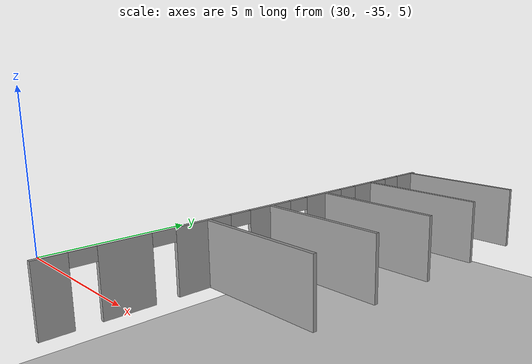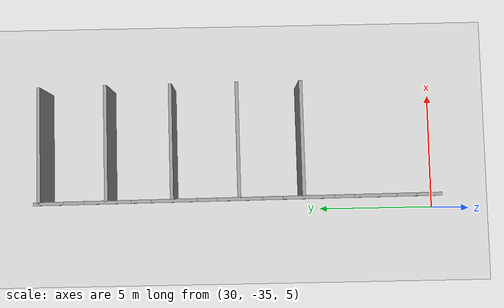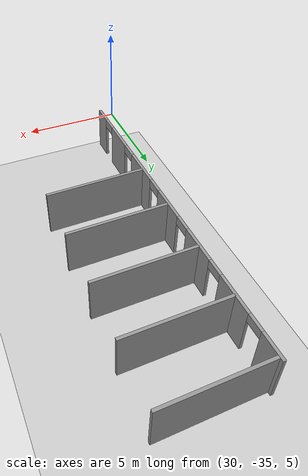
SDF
<sdf version="1.6">
 <world name="default">
  <model name="ground_plane">
   <static>1</static>
   <link name="link">
    <collision name="collision">
     <geometry><plane><normal>0 0 1</normal><size>100 100</size></plane></geometry>
     <surface>
      <contact><collide_bitmask>65535</collide_bitmask></contact>
      <friction><ode><mu>100</mu><mu2>50</mu2></ode></friction>
     </surface>
    </collision>
    <visual name="visual">
     <cast_shadows>0</cast_shadows>
     <geometry><plane><normal>0 0 1</normal><size>100 100</size></plane></geometry>
     <material>
      <script><uri>file://media/materials/scripts/gazebo.material</uri><name>Gazebo/Grey</name></script>
     </material>
    </visual>
   </link>
  </model>
  <model name="6_cubicles_1">
   <link name="Wall_18">
    <pose>2.64253 3.06306 -0 0 0 -1.5708</pose>
    <visual name="Wall_18_Visual_0">
     <pose>-8.56856 0 1.25 0 -0 0</pose>
     <geometry><box><size>1.11288 0.15 2.5</size></box></geometry>
     <material>
      <script><uri>file://media/materials/scripts/gazebo.material</uri><name>Gazebo/Grey</name></script>
      <ambient>1 1 1 1</ambient>
      <shader type="pixel"/>
     </material>
     <meta><layer>0</layer></meta>
    </visual>
    <visual name="Wall_18_Visual_5">
     <pose>5.80967 0 1.25 0 -0 0</pose>
     <geometry><box><size>2.1139 0.15 2.5</size></box></geometry>
     <material>
      <script><uri>file://media/materials/scripts/gazebo.material</uri><name>Gazebo/Grey</name></script>
      <ambient>1 1 1 1</ambient>
      <shader type="pixel"/>
     </material>
     <meta><layer>0</layer></meta>
    </visual>
    <visual name="Wall_18_Visual_11">
     <pose>4.30272 0 2.25 0 -0 0</pose>
     <geometry><box><size>0.9 0.15 0.5</size></box></geometry>
     <material>
      <script><uri>file://media/materials/scripts/gazebo.material</uri><name>Gazebo/Grey</name></script>
      <ambient>1 1 1 1</ambient>
      <shader type="pixel"/>
     </material>
     <meta><layer>0</layer></meta>
    </visual>
    <visual name="Wall_18_Visual_8">
     <pose>-4.77713 0 2.25 0 -0 0</pose>
     <geometry><box><size>0.9 0.15 0.5</size></box></geometry>
     <material>
      <script><uri>file://media/materials/scripts/gazebo.material</uri><name>Gazebo/Grey</name></script>
      <ambient>1 1 1 1</ambient>
      <shader type="pixel"/>
     </material>
     <meta><layer>0</layer></meta>
    </visual>
    <visual name="Wall_18_Visual_4">
     <pose>2.83392 0 1.25 0 -0 0</pose>
     <geometry><box><size>2.0376 0.15 2.5</size></box></geometry>
     <material>
      <script><uri>file://media/materials/scripts/gazebo.material</uri><name>Gazebo/Grey</name></script>
      <ambient>1 1 1 1</ambient>
      <shader type="pixel"/>
     </material>
     <meta><layer>0</layer></meta>
    </visual>
    <visual name="Wall_18_Visual_3">
     <pose>-0.103676 0 1.25 0 -0 0</pose>
     <geometry><box><size>2.0376 0.15 2.5</size></box></geometry>
     <material>
      <script><uri>file://media/materials/scripts/gazebo.material</uri><name>Gazebo/Grey</name></script>
      <ambient>1 1 1 1</ambient>
      <shader type="pixel"/>
     </material>
     <meta><layer>0</layer></meta>
    </visual>
    <visual name="Wall_18_Visual_12">
     <pose>7.31662 0 2.25 0 -0 0</pose>
     <geometry><box><size>0.9 0.15 0.5</size></box></geometry>
     <material>
      <script><uri>file://media/materials/scripts/gazebo.material</uri><name>Gazebo/Grey</name></script>
      <ambient>1 1 1 1</ambient>
      <shader type="pixel"/>
     </material>
     <meta><layer>0</layer></meta>
    </visual>
    <visual name="Wall_18_Visual_9">
     <pose>-1.57248 0 2.25 0 -0 0</pose>
     <geometry><box><size>0.9 0.15 0.5</size></box></geometry>
     <material>
      <script><uri>file://media/materials/scripts/gazebo.material</uri><name>Gazebo/Grey</name></script>
      <ambient>1 1 1 1</ambient>
      <shader type="pixel"/>
     </material>
     <meta><layer>0</layer></meta>
    </visual>
    <visual name="Wall_18_Visual_2">
     <pose>-3.1748 0 1.25 0 -0 0</pose>
     <geometry><box><size>2.30465 0.15 2.5</size></box></geometry>
     <material>
      <script><uri>file://media/materials/scripts/gazebo.material</uri><name>Gazebo/Grey</name></script>
      <ambient>1 1 1 1</ambient>
      <shader type="pixel"/>
     </material>
     <meta><layer>0</layer></meta>
    </visual>
    <visual name="Wall_18_Visual_6">
     <pose>8.44581 0 1.25 0 -0 0</pose>
     <geometry><box><size>1.35838 0.15 2.5</size></box></geometry>
     <material>
      <script><uri>file://media/materials/scripts/gazebo.material</uri><name>Gazebo/Grey</name></script>
      <ambient>1 1 1 1</ambient>
      <shader type="pixel"/>
     </material>
     <meta><layer>0</layer></meta>
    </visual>
    <visual name="Wall_18_Visual_1">
     <pose>-6.16963 0 1.25 0 -0 0</pose>
     <geometry><box><size>1.885 0.15 2.5</size></box></geometry>
     <material>
      <script><uri>file://media/materials/scripts/gazebo.material</uri><name>Gazebo/Grey</name></script>
      <ambient>1 1 1 1</ambient>
      <shader type="pixel"/>
     </material>
     <meta><layer>0</layer></meta>
    </visual>
    <visual name="Wall_18_Visual_10">
     <pose>1.36512 0 2.25 0 -0 0</pose>
     <geometry><box><size>0.9 0.15 0.5</size></box></geometry>
     <material>
      <script><uri>file://media/materials/scripts/gazebo.material</uri><name>Gazebo/Grey</name></script>
      <ambient>1 1 1 1</ambient>
      <shader type="pixel"/>
     </material>
     <meta><layer>0</layer></meta>
    </visual>
    <visual name="Wall_18_Visual_7">
     <pose>-7.56212 0 2.25 0 -0 0</pose>
     <geometry><box><size>0.9 0.15 0.5</size></box></geometry>
     <material>
      <script><uri>file://media/materials/scripts/gazebo.material</uri><name>Gazebo/Grey</name></script>
      <ambient>1 1 1 1</ambient>
      <shader type="pixel"/>
     </material>
     <meta><layer>0</layer></meta>
    </visual>
    <collision name="Wall_18_Collision_7">
     <pose>-7.56212 0 2.25 0 -0 0</pose>
     <geometry><box><size>0.9 0.15 0.5</size></box></geometry>
     <surface>
      <friction>
       <ode><mu>1</mu><mu2>1</mu2><fdir1>0 0 0</fdir1><slip1>0</slip1><slip2>0</slip2></ode>
       <torsional>
        <coefficient>1</coefficient>
        <patch_radius>0</patch_radius>
        <surface_radius>0</surface_radius>
        <use_patch_radius>1</use_patch_radius>
        <ode><slip>0</slip></ode>
       </torsional>
      </friction>
      <bounce><restitution_coefficient>0</restitution_coefficient><threshold>1e+06</threshold></bounce>
      <contact>
       <collide_without_contact>0</collide_without_contact>
       <collide_without_contact_bitmask>1</collide_without_contact_bitmask>
       <collide_bitmask>1</collide_bitmask>
       <ode>
        <soft_cfm>0</soft_cfm>
        <soft_erp>0.2</soft_erp>
        <kp>1e+13</kp>
        <kd>1</kd>
        <max_vel>0.01</max_vel>
        <min_depth>0</min_depth>
       </ode>
       <bullet>
        <split_impulse>1</split_impulse>
        <split_impulse_penetration_threshold>-0.01</split_impulse_penetration_threshold>
        <soft_cfm>0</soft_cfm>
        <soft_erp>0.2</soft_erp>
        <kp>1e+13</kp>
        <kd>1</kd>
       </bullet>
      </contact>
     </surface>
    </collision>
    <collision name="Wall_18_Collision_1">
     <pose>-6.16963 0 1.25 0 -0 0</pose>
     <geometry><box><size>1.885 0.15 2.5</size></box></geometry>
     <surface>
      <friction>
       <ode><mu>1</mu><mu2>1</mu2><fdir1>0 0 0</fdir1><slip1>0</slip1><slip2>0</slip2></ode>
       <torsional>
        <coefficient>1</coefficient>
        <patch_radius>0</patch_radius>
        <surface_radius>0</surface_radius>
        <use_patch_radius>1</use_patch_radius>
        <ode><slip>0</slip></ode>
       </torsional>
      </friction>
      <bounce><restitution_coefficient>0</restitution_coefficient><threshold>1e+06</threshold></bounce>
      <contact>
       <collide_without_contact>0</collide_without_contact>
       <collide_without_contact_bitmask>1</collide_without_contact_bitmask>
       <collide_bitmask>1</collide_bitmask>
       <ode>
        <soft_cfm>0</soft_cfm>
        <soft_erp>0.2</soft_erp>
        <kp>1e+13</kp>
        <kd>1</kd>
        <max_vel>0.01</max_vel>
        <min_depth>0</min_depth>
       </ode>
       <bullet>
        <split_impulse>1</split_impulse>
        <split_impulse_penetration_threshold>-0.01</split_impulse_penetration_threshold>
        <soft_cfm>0</soft_cfm>
        <soft_erp>0.2</soft_erp>
        <kp>1e+13</kp>
        <kd>1</kd>
       </bullet>
      </contact>
     </surface>
    </collision>
    <collision name="Wall_18_Collision_12">
     <pose>7.31662 0 2.25 0 -0 0</pose>
     <geometry><box><size>0.9 0.15 0.5</size></box></geometry>
     <surface>
      <friction>
       <ode><mu>1</mu><mu2>1</mu2><fdir1>0 0 0</fdir1><slip1>0</slip1><slip2>0</slip2></ode>
       <torsional>
        <coefficient>1</coefficient>
        <patch_radius>0</patch_radius>
        <surface_radius>0</surface_radius>
        <use_patch_radius>1</use_patch_radius>
        <ode><slip>0</slip></ode>
       </torsional>
      </friction>
      <bounce><restitution_coefficient>0</restitution_coefficient><threshold>1e+06</threshold></bounce>
      <contact>
       <collide_without_contact>0</collide_without_contact>
       <collide_without_contact_bitmask>1</collide_without_contact_bitmask>
       <collide_bitmask>1</collide_bitmask>
       <ode>
        <soft_cfm>0</soft_cfm>
        <soft_erp>0.2</soft_erp>
        <kp>1e+13</kp>
        <kd>1</kd>
        <max_vel>0.01</max_vel>
        <min_depth>0</min_depth>
       </ode>
       <bullet>
        <split_impulse>1</split_impulse>
        <split_impulse_penetration_threshold>-0.01</split_impulse_penetration_threshold>
        <soft_cfm>0</soft_cfm>
        <soft_erp>0.2</soft_erp>
        <kp>1e+13</kp>
        <kd>1</kd>
       </bullet>
      </contact>
     </surface>
    </collision>
    <collision name="Wall_18_Collision_0">
     <pose>-8.56856 0 1.25 0 -0 0</pose>
     <geometry><box><size>1.11288 0.15 2.5</size></box></geometry>
     <surface>
      <friction>
       <ode><mu>1</mu><mu2>1</mu2><fdir1>0 0 0</fdir1><slip1>0</slip1><slip2>0</slip2></ode>
       <torsional>
        <coefficient>1</coefficient>
        <patch_radius>0</patch_radius>
        <surface_radius>0</surface_radius>
        <use_patch_radius>1</use_patch_radius>
        <ode><slip>0</slip></ode>
       </torsional>
      </friction>
      <bounce><restitution_coefficient>0</restitution_coefficient><threshold>1e+06</threshold></bounce>
      <contact>
       <collide_without_contact>0</collide_without_contact>
       <collide_without_contact_bitmask>1</collide_without_contact_bitmask>
       <collide_bitmask>1</collide_bitmask>
       <ode>
        <soft_cfm>0</soft_cfm>
        <soft_erp>0.2</soft_erp>
        <kp>1e+13</kp>
        <kd>1</kd>
        <max_vel>0.01</max_vel>
        <min_depth>0</min_depth>
       </ode>
       <bullet>
        <split_impulse>1</split_impulse>
        <split_impulse_penetration_threshold>-0.01</split_impulse_penetration_threshold>
        <soft_cfm>0</soft_cfm>
        <soft_erp>0.2</soft_erp>
        <kp>1e+13</kp>
        <kd>1</kd>
       </bullet>
      </contact>
     </surface>
    </collision>
    <collision name="Wall_18_Collision_2">
     <pose>-3.1748 0 1.25 0 -0 0</pose>
     <geometry><box><size>2.30465 0.15 2.5</size></box></geometry>
     <surface>
      <friction>
       <ode><mu>1</mu><mu2>1</mu2><fdir1>0 0 0</fdir1><slip1>0</slip1><slip2>0</slip2></ode>
       <torsional>
        <coefficient>1</coefficient>
        <patch_radius>0</patch_radius>
        <surface_radius>0</surface_radius>
        <use_patch_radius>1</use_patch_radius>
        <ode><slip>0</slip></ode>
       </torsional>
      </friction>
      <bounce><restitution_coefficient>0</restitution_coefficient><threshold>1e+06</threshold></bounce>
      <contact>
       <collide_without_contact>0</collide_without_contact>
       <collide_without_contact_bitmask>1</collide_without_contact_bitmask>
       <collide_bitmask>1</collide_bitmask>
       <ode>
        <soft_cfm>0</soft_cfm>
        <soft_erp>0.2</soft_erp>
        <kp>1e+13</kp>
        <kd>1</kd>
        <max_vel>0.01</max_vel>
        <min_depth>0</min_depth>
       </ode>
       <bullet>
        <split_impulse>1</split_impulse>
        <split_impulse_penetration_threshold>-0.01</split_impulse_penetration_threshold>
        <soft_cfm>0</soft_cfm>
        <soft_erp>0.2</soft_erp>
        <kp>1e+13</kp>
        <kd>1</kd>
       </bullet>
      </contact>
     </surface>
    </collision>
    <collision name="Wall_18_Collision_5">
     <pose>5.80967 0 1.25 0 -0 0</pose>
     <geometry><box><size>2.1139 0.15 2.5</size></box></geometry>
     <surface>
      <friction>
       <ode><mu>1</mu><mu2>1</mu2><fdir1>0 0 0</fdir1><slip1>0</slip1><slip2>0</slip2></ode>
       <torsional>
        <coefficient>1</coefficient>
        <patch_radius>0</patch_radius>
        <surface_radius>0</surface_radius>
        <use_patch_radius>1</use_patch_radius>
        <ode><slip>0</slip></ode>
       </torsional>
      </friction>
      <bounce><restitution_coefficient>0</restitution_coefficient><threshold>1e+06</threshold></bounce>
      <contact>
       <collide_without_contact>0</collide_without_contact>
       <collide_without_contact_bitmask>1</collide_without_contact_bitmask>
       <collide_bitmask>1</collide_bitmask>
       <ode>
        <soft_cfm>0</soft_cfm>
        <soft_erp>0.2</soft_erp>
        <kp>1e+13</kp>
        <kd>1</kd>
        <max_vel>0.01</max_vel>
        <min_depth>0</min_depth>
       </ode>
       <bullet>
        <split_impulse>1</split_impulse>
        <split_impulse_penetration_threshold>-0.01</split_impulse_penetration_threshold>
        <soft_cfm>0</soft_cfm>
        <soft_erp>0.2</soft_erp>
        <kp>1e+13</kp>
        <kd>1</kd>
       </bullet>
      </contact>
     </surface>
    </collision>
    <collision name="Wall_18_Collision_6">
     <pose>8.44581 0 1.25 0 -0 0</pose>
     <geometry><box><size>1.35838 0.15 2.5</size></box></geometry>
     <surface>
      <friction>
       <ode><mu>1</mu><mu2>1</mu2><fdir1>0 0 0</fdir1><slip1>0</slip1><slip2>0</slip2></ode>
       <torsional>
        <coefficient>1</coefficient>
        <patch_radius>0</patch_radius>
        <surface_radius>0</surface_radius>
        <use_patch_radius>1</use_patch_radius>
        <ode><slip>0</slip></ode>
       </torsional>
      </friction>
      <bounce><restitution_coefficient>0</restitution_coefficient><threshold>1e+06</threshold></bounce>
      <contact>
       <collide_without_contact>0</collide_without_contact>
       <collide_without_contact_bitmask>1</collide_without_contact_bitmask>
       <collide_bitmask>1</collide_bitmask>
       <ode>
        <soft_cfm>0</soft_cfm>
        <soft_erp>0.2</soft_erp>
        <kp>1e+13</kp>
        <kd>1</kd>
        <max_vel>0.01</max_vel>
        <min_depth>0</min_depth>
       </ode>
       <bullet>
        <split_impulse>1</split_impulse>
        <split_impulse_penetration_threshold>-0.01</split_impulse_penetration_threshold>
        <soft_cfm>0</soft_cfm>
        <soft_erp>0.2</soft_erp>
        <kp>1e+13</kp>
        <kd>1</kd>
       </bullet>
      </contact>
     </surface>
    </collision>
    <collision name="Wall_18_Collision_4">
     <pose>2.83392 0 1.25 0 -0 0</pose>
     <geometry><box><size>2.0376 0.15 2.5</size></box></geometry>
     <surface>
      <friction>
       <ode><mu>1</mu><mu2>1</mu2><fdir1>0 0 0</fdir1><slip1>0</slip1><slip2>0</slip2></ode>
       <torsional>
        <coefficient>1</coefficient>
        <patch_radius>0</patch_radius>
        <surface_radius>0</surface_radius>
        <use_patch_radius>1</use_patch_radius>
        <ode><slip>0</slip></ode>
       </torsional>
      </friction>
      <bounce><restitution_coefficient>0</restitution_coefficient><threshold>1e+06</threshold></bounce>
      <contact>
       <collide_without_contact>0</collide_without_contact>
       <collide_without_contact_bitmask>1</collide_without_contact_bitmask>
       <collide_bitmask>1</collide_bitmask>
       <ode>
        <soft_cfm>0</soft_cfm>
        <soft_erp>0.2</soft_erp>
        <kp>1e+13</kp>
        <kd>1</kd>
        <max_vel>0.01</max_vel>
        <min_depth>0</min_depth>
       </ode>
       <bullet>
        <split_impulse>1</split_impulse>
        <split_impulse_penetration_threshold>-0.01</split_impulse_penetration_threshold>
        <soft_cfm>0</soft_cfm>
        <soft_erp>0.2</soft_erp>
        <kp>1e+13</kp>
        <kd>1</kd>
       </bullet>
      </contact>
     </surface>
    </collision>
    <collision name="Wall_18_Collision_8">
     <pose>-4.77713 0 2.25 0 -0 0</pose>
     <geometry><box><size>0.9 0.15 0.5</size></box></geometry>
     <surface>
      <friction>
       <ode><mu>1</mu><mu2>1</mu2><fdir1>0 0 0</fdir1><slip1>0</slip1><slip2>0</slip2></ode>
       <torsional>
        <coefficient>1</coefficient>
        <patch_radius>0</patch_radius>
        <surface_radius>0</surface_radius>
        <use_patch_radius>1</use_patch_radius>
        <ode><slip>0</slip></ode>
       </torsional>
      </friction>
      <bounce><restitution_coefficient>0</restitution_coefficient><threshold>1e+06</threshold></bounce>
      <contact>
       <collide_without_contact>0</collide_without_contact>
       <collide_without_contact_bitmask>1</collide_without_contact_bitmask>
       <collide_bitmask>1</collide_bitmask>
       <ode>
        <soft_cfm>0</soft_cfm>
        <soft_erp>0.2</soft_erp>
        <kp>1e+13</kp>
        <kd>1</kd>
        <max_vel>0.01</max_vel>
        <min_depth>0</min_depth>
       </ode>
       <bullet>
        <split_impulse>1</split_impulse>
        <split_impulse_penetration_threshold>-0.01</split_impulse_penetration_threshold>
        <soft_cfm>0</soft_cfm>
        <soft_erp>0.2</soft_erp>
        <kp>1e+13</kp>
        <kd>1</kd>
       </bullet>
      </contact>
     </surface>
    </collision>
    <collision name="Wall_18_Collision_3">
     <pose>-0.103676 0 1.25 0 -0 0</pose>
     <geometry><box><size>2.0376 0.15 2.5</size></box></geometry>
     <surface>
      <friction>
       <ode><mu>1</mu><mu2>1</mu2><fdir1>0 0 0</fdir1><slip1>0</slip1><slip2>0</slip2></ode>
       <torsional>
        <coefficient>1</coefficient>
        <patch_radius>0</patch_radius>
        <surface_radius>0</surface_radius>
        <use_patch_radius>1</use_patch_radius>
        <ode><slip>0</slip></ode>
       </torsional>
      </friction>
      <bounce><restitution_coefficient>0</restitution_coefficient><threshold>1e+06</threshold></bounce>
      <contact>
       <collide_without_contact>0</collide_without_contact>
       <collide_without_contact_bitmask>1</collide_without_contact_bitmask>
       <collide_bitmask>1</collide_bitmask>
       <ode>
        <soft_cfm>0</soft_cfm>
        <soft_erp>0.2</soft_erp>
        <kp>1e+13</kp>
        <kd>1</kd>
        <max_vel>0.01</max_vel>
        <min_depth>0</min_depth>
       </ode>
       <bullet>
        <split_impulse>1</split_impulse>
        <split_impulse_penetration_threshold>-0.01</split_impulse_penetration_threshold>
        <soft_cfm>0</soft_cfm>
        <soft_erp>0.2</soft_erp>
        <kp>1e+13</kp>
        <kd>1</kd>
       </bullet>
      </contact>
     </surface>
    </collision>
    <collision name="Wall_18_Collision_9">
     <pose>-1.57248 0 2.25 0 -0 0</pose>
     <geometry><box><size>0.9 0.15 0.5</size></box></geometry>
     <surface>
      <friction>
       <ode><mu>1</mu><mu2>1</mu2><fdir1>0 0 0</fdir1><slip1>0</slip1><slip2>0</slip2></ode>
       <torsional>
        <coefficient>1</coefficient>
        <patch_radius>0</patch_radius>
        <surface_radius>0</surface_radius>
        <use_patch_radius>1</use_patch_radius>
        <ode><slip>0</slip></ode>
       </torsional>
      </friction>
      <bounce><restitution_coefficient>0</restitution_coefficient><threshold>1e+06</threshold></bounce>
      <contact>
       <collide_without_contact>0</collide_without_contact>
       <collide_without_contact_bitmask>1</collide_without_contact_bitmask>
       <collide_bitmask>1</collide_bitmask>
       <ode>
        <soft_cfm>0</soft_cfm>
        <soft_erp>0.2</soft_erp>
        <kp>1e+13</kp>
        <kd>1</kd>
        <max_vel>0.01</max_vel>
        <min_depth>0</min_depth>
       </ode>
       <bullet>
        <split_impulse>1</split_impulse>
        <split_impulse_penetration_threshold>-0.01</split_impulse_penetration_threshold>
        <soft_cfm>0</soft_cfm>
        <soft_erp>0.2</soft_erp>
        <kp>1e+13</kp>
        <kd>1</kd>
       </bullet>
      </contact>
     </surface>
    </collision>
    <collision name="Wall_18_Collision_11">
     <pose>4.30272 0 2.25 0 -0 0</pose>
     <geometry><box><size>0.9 0.15 0.5</size></box></geometry>
     <surface>
      <friction>
       <ode><mu>1</mu><mu2>1</mu2><fdir1>0 0 0</fdir1><slip1>0</slip1><slip2>0</slip2></ode>
       <torsional>
        <coefficient>1</coefficient>
        <patch_radius>0</patch_radius>
        <surface_radius>0</surface_radius>
        <use_patch_radius>1</use_patch_radius>
        <ode><slip>0</slip></ode>
       </torsional>
      </friction>
      <bounce><restitution_coefficient>0</restitution_coefficient><threshold>1e+06</threshold></bounce>
      <contact>
       <collide_without_contact>0</collide_without_contact>
       <collide_without_contact_bitmask>1</collide_without_contact_bitmask>
       <collide_bitmask>1</collide_bitmask>
       <ode>
        <soft_cfm>0</soft_cfm>
        <soft_erp>0.2</soft_erp>
        <kp>1e+13</kp>
        <kd>1</kd>
        <max_vel>0.01</max_vel>
        <min_depth>0</min_depth>
       </ode>
       <bullet>
        <split_impulse>1</split_impulse>
        <split_impulse_penetration_threshold>-0.01</split_impulse_penetration_threshold>
        <soft_cfm>0</soft_cfm>
        <soft_erp>0.2</soft_erp>
        <kp>1e+13</kp>
        <kd>1</kd>
       </bullet>
      </contact>
     </surface>
    </collision>
    <collision name="Wall_18_Collision_10">
     <pose>1.36512 0 2.25 0 -0 0</pose>
     <geometry><box><size>0.9 0.15 0.5</size></box></geometry>
     <surface>
      <friction>
       <ode><mu>1</mu><mu2>1</mu2><fdir1>0 0 0</fdir1><slip1>0</slip1><slip2>0</slip2></ode>
       <torsional>
        <coefficient>1</coefficient>
        <patch_radius>0</patch_radius>
        <surface_radius>0</surface_radius>
        <use_patch_radius>1</use_patch_radius>
        <ode><slip>0</slip></ode>
       </torsional>
      </friction>
      <bounce><restitution_coefficient>0</restitution_coefficient><threshold>1e+06</threshold></bounce>
      <contact>
       <collide_without_contact>0</collide_without_contact>
       <collide_without_contact_bitmask>1</collide_without_contact_bitmask>
       <collide_bitmask>1</collide_bitmask>
       <ode>
        <soft_cfm>0</soft_cfm>
        <soft_erp>0.2</soft_erp>
        <kp>1e+13</kp>
        <kd>1</kd>
        <max_vel>0.01</max_vel>
        <min_depth>0</min_depth>
       </ode>
       <bullet>
        <split_impulse>1</split_impulse>
        <split_impulse_penetration_threshold>-0.01</split_impulse_penetration_threshold>
        <soft_cfm>0</soft_cfm>
        <soft_erp>0.2</soft_erp>
        <kp>1e+13</kp>
        <kd>1</kd>
       </bullet>
      </contact>
     </surface>
    </collision>
   </link>
   <link name="Wall_21">
    <pose>-0.019077 6.0361 0 0 -0 0</pose>
    <visual name="Wall_21_Visual">
     <pose>0 0 1.25 0 -0 0</pose>
     <geometry><box><size>5.25 0.15 2.5</size></box></geometry>
     <material>
      <script><uri>file://media/materials/scripts/gazebo.material</uri><name>Gazebo/Grey</name></script>
      <ambient>1 1 1 1</ambient>
      <shader type="pixel"/>
     </material>
     <meta><layer>0</layer></meta>
    </visual>
    <collision name="Wall_21_Collision">
     <pose>0 0 1.25 0 -0 0</pose>
     <geometry><box><size>5.25 0.15 2.5</size></box></geometry>
     <surface>
      <friction>
       <ode><mu>1</mu><mu2>1</mu2><fdir1>0 0 0</fdir1><slip1>0</slip1><slip2>0</slip2></ode>
       <torsional>
        <coefficient>1</coefficient>
        <patch_radius>0</patch_radius>
        <surface_radius>0</surface_radius>
        <use_patch_radius>1</use_patch_radius>
        <ode><slip>0</slip></ode>
       </torsional>
      </friction>
      <bounce><restitution_coefficient>0</restitution_coefficient><threshold>1e+06</threshold></bounce>
      <contact>
       <collide_without_contact>0</collide_without_contact>
       <collide_without_contact_bitmask>1</collide_without_contact_bitmask>
       <collide_bitmask>1</collide_bitmask>
       <ode>
        <soft_cfm>0</soft_cfm>
        <soft_erp>0.2</soft_erp>
        <kp>1e+13</kp>
        <kd>1</kd>
        <max_vel>0.01</max_vel>
        <min_depth>0</min_depth>
       </ode>
       <bullet>
        <split_impulse>1</split_impulse>
        <split_impulse_penetration_threshold>-0.01</split_impulse_penetration_threshold>
        <soft_cfm>0</soft_cfm>
        <soft_erp>0.2</soft_erp>
        <kp>1e+13</kp>
        <kd>1</kd>
       </bullet>
      </contact>
     </surface>
    </collision>
   </link>
   <link name="Wall_23">
    <pose>-0.019073 3.13665 0 0 -0 0</pose>
    <visual name="Wall_23_Visual">
     <pose>0 0 1.25 0 -0 0</pose>
     <geometry><box><size>5.25 0.15 2.5</size></box></geometry>
     <material>
      <script><uri>file://media/materials/scripts/gazebo.material</uri><name>Gazebo/Grey</name></script>
      <ambient>1 1 1 1</ambient>
      <shader type="pixel"/>
     </material>
     <meta><layer>0</layer></meta>
    </visual>
    <collision name="Wall_23_Collision">
     <pose>0 0 1.25 0 -0 0</pose>
     <geometry><box><size>5.25 0.15 2.5</size></box></geometry>
     <surface>
      <friction>
       <ode><mu>1</mu><mu2>1</mu2><fdir1>0 0 0</fdir1><slip1>0</slip1><slip2>0</slip2></ode>
       <torsional>
        <coefficient>1</coefficient>
        <patch_radius>0</patch_radius>
        <surface_radius>0</surface_radius>
        <use_patch_radius>1</use_patch_radius>
        <ode><slip>0</slip></ode>
       </torsional>
      </friction>
      <bounce><restitution_coefficient>0</restitution_coefficient><threshold>1e+06</threshold></bounce>
      <contact>
       <collide_without_contact>0</collide_without_contact>
       <collide_without_contact_bitmask>1</collide_without_contact_bitmask>
       <collide_bitmask>1</collide_bitmask>
       <ode>
        <soft_cfm>0</soft_cfm>
        <soft_erp>0.2</soft_erp>
        <kp>1e+13</kp>
        <kd>1</kd>
        <max_vel>0.01</max_vel>
        <min_depth>0</min_depth>
       </ode>
       <bullet>
        <split_impulse>1</split_impulse>
        <split_impulse_penetration_threshold>-0.01</split_impulse_penetration_threshold>
        <soft_cfm>0</soft_cfm>
        <soft_erp>0.2</soft_erp>
        <kp>1e+13</kp>
        <kd>1</kd>
       </bullet>
      </contact>
     </surface>
    </collision>
   </link>
   <link name="Wall_25">
    <pose>-0.019074 0.122751 0 0 -0 0</pose>
    <visual name="Wall_25_Visual">
     <pose>0 0 1.25 0 -0 0</pose>
     <geometry><box><size>5.25 0.15 2.5</size></box></geometry>
     <material>
      <script><uri>file://media/materials/scripts/gazebo.material</uri><name>Gazebo/Grey</name></script>
      <ambient>1 1 1 1</ambient>
      <shader type="pixel"/>
     </material>
     <meta><layer>0</layer></meta>
    </visual>
    <collision name="Wall_25_Collision">
     <pose>0 0 1.25 0 -0 0</pose>
     <geometry><box><size>5.25 0.15 2.5</size></box></geometry>
     <surface>
      <friction>
       <ode><mu>1</mu><mu2>1</mu2><fdir1>0 0 0</fdir1><slip1>0</slip1><slip2>0</slip2></ode>
       <torsional>
        <coefficient>1</coefficient>
        <patch_radius>0</patch_radius>
        <surface_radius>0</surface_radius>
        <use_patch_radius>1</use_patch_radius>
        <ode><slip>0</slip></ode>
       </torsional>
      </friction>
      <bounce><restitution_coefficient>0</restitution_coefficient><threshold>1e+06</threshold></bounce>
      <contact>
       <collide_without_contact>0</collide_without_contact>
       <collide_without_contact_bitmask>1</collide_without_contact_bitmask>
       <collide_bitmask>1</collide_bitmask>
       <ode>
        <soft_cfm>0</soft_cfm>
        <soft_erp>0.2</soft_erp>
        <kp>1e+13</kp>
        <kd>1</kd>
        <max_vel>0.01</max_vel>
        <min_depth>0</min_depth>
       </ode>
       <bullet>
        <split_impulse>1</split_impulse>
        <split_impulse_penetration_threshold>-0.01</split_impulse_penetration_threshold>
        <soft_cfm>0</soft_cfm>
        <soft_erp>0.2</soft_erp>
        <kp>1e+13</kp>
        <kd>1</kd>
       </bullet>
      </contact>
     </surface>
    </collision>
   </link>
   <link name="Wall_27">
    <pose>-0.019075 -2.81485 0 0 -0 0</pose>
    <visual name="Wall_27_Visual">
     <pose>0 0 1.25 0 -0 0</pose>
     <geometry><box><size>5.25 0.15 2.5</size></box></geometry>
     <material>
      <script><uri>file://media/materials/scripts/gazebo.material</uri><name>Gazebo/Grey</name></script>
      <ambient>1 1 1 1</ambient>
      <shader type="pixel"/>
     </material>
     <meta><layer>0</layer></meta>
    </visual>
    <collision name="Wall_27_Collision">
     <pose>0 0 1.25 0 -0 0</pose>
     <geometry><box><size>5.25 0.15 2.5</size></box></geometry>
     <surface>
      <friction>
       <ode><mu>1</mu><mu2>1</mu2><fdir1>0 0 0</fdir1><slip1>0</slip1><slip2>0</slip2></ode>
       <torsional>
        <coefficient>1</coefficient>
        <patch_radius>0</patch_radius>
        <surface_radius>0</surface_radius>
        <use_patch_radius>1</use_patch_radius>
        <ode><slip>0</slip></ode>
       </torsional>
      </friction>
      <bounce><restitution_coefficient>0</restitution_coefficient><threshold>1e+06</threshold></bounce>
      <contact>
       <collide_without_contact>0</collide_without_contact>
       <collide_without_contact_bitmask>1</collide_without_contact_bitmask>
       <collide_bitmask>1</collide_bitmask>
       <ode>
        <soft_cfm>0</soft_cfm>
        <soft_erp>0.2</soft_erp>
        <kp>1e+13</kp>
        <kd>1</kd>
        <max_vel>0.01</max_vel>
        <min_depth>0</min_depth>
       </ode>
       <bullet>
        <split_impulse>1</split_impulse>
        <split_impulse_penetration_threshold>-0.01</split_impulse_penetration_threshold>
        <soft_cfm>0</soft_cfm>
        <soft_erp>0.2</soft_erp>
        <kp>1e+13</kp>
        <kd>1</kd>
       </bullet>
      </contact>
     </surface>
    </collision>
   </link>
   <link name="Wall_29">
    <pose>0.019076 -5.82875 0 0 -0 0</pose>
    <visual name="Wall_29_Visual">
     <pose>0 0 1.25 0 -0 0</pose>
     <geometry><box><size>5.25 0.15 2.5</size></box></geometry>
     <material>
      <script><uri>file://media/materials/scripts/gazebo.material</uri><name>Gazebo/Grey</name></script>
      <ambient>1 1 1 1</ambient>
      <shader type="pixel"/>
     </material>
     <meta><layer>0</layer></meta>
    </visual>
    <collision name="Wall_29_Collision">
     <pose>0 0 1.25 0 -0 0</pose>
     <geometry><box><size>5.25 0.15 2.5</size></box></geometry>
     <surface>
      <friction>
       <ode><mu>1</mu><mu2>1</mu2><fdir1>0 0 0</fdir1><slip1>0</slip1><slip2>0</slip2></ode>
       <torsional>
        <coefficient>1</coefficient>
        <patch_radius>0</patch_radius>
        <surface_radius>0</surface_radius>
        <use_patch_radius>1</use_patch_radius>
        <ode><slip>0</slip></ode>
       </torsional>
      </friction>
      <bounce><restitution_coefficient>0</restitution_coefficient><threshold>1e+06</threshold></bounce>
      <contact>
       <collide_without_contact>0</collide_without_contact>
       <collide_without_contact_bitmask>1</collide_without_contact_bitmask>
       <collide_bitmask>1</collide_bitmask>
       <ode>
        <soft_cfm>0</soft_cfm>
        <soft_erp>0.2</soft_erp>
        <kp>1e+13</kp>
        <kd>1</kd>
        <max_vel>0.01</max_vel>
        <min_depth>0</min_depth>
       </ode>
       <bullet>
        <split_impulse>1</split_impulse>
        <split_impulse_penetration_threshold>-0.01</split_impulse_penetration_threshold>
        <soft_cfm>0</soft_cfm>
        <soft_erp>0.2</soft_erp>
        <kp>1e+13</kp>
        <kd>1</kd>
       </bullet>
      </contact>
     </surface>
    </collision>
   </link>
   <static>1</static>
   <pose>33.1377 -23.2428 2.66791 0 -0 -3.13437</pose>
  </model>
 </world>
</sdf>
